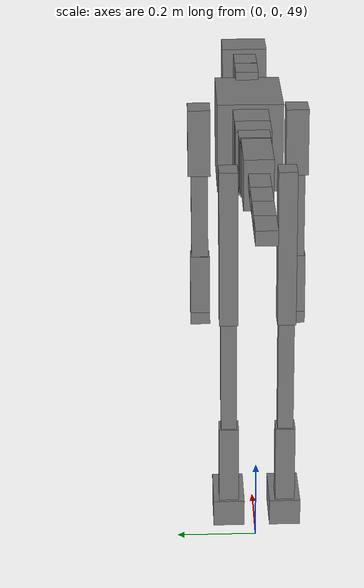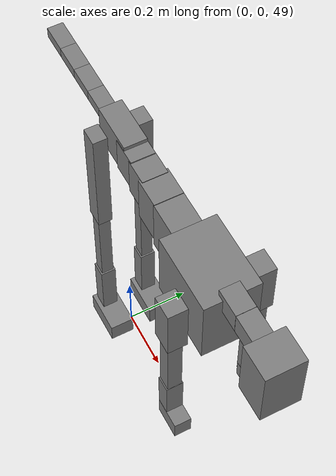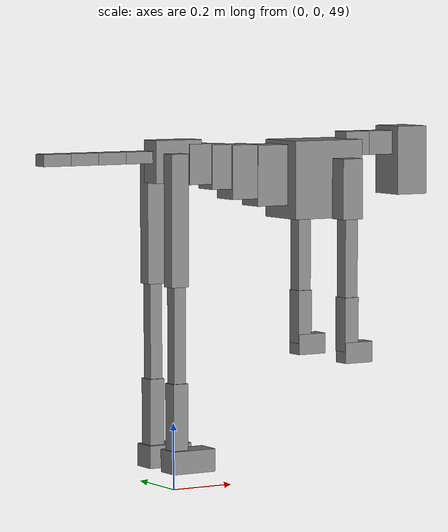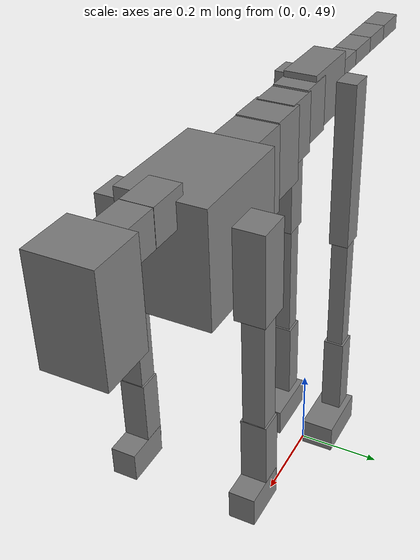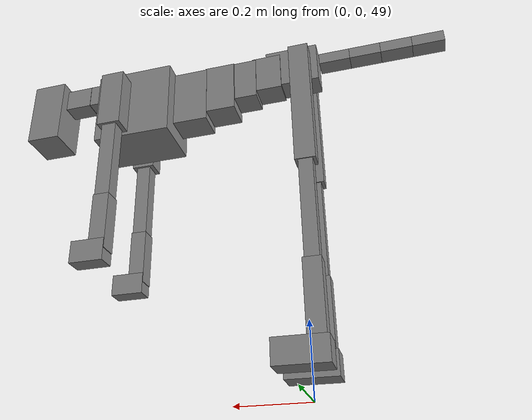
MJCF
<mujoco model="dog">

    <default>
        <joint armature="0.02" stiffness="1" damping="0.2" limited="true"/>
        <geom condim="3" friction="1 0.05 0.05" margin="0.01"/>
        <motor ctrllimited="true" ctrlrange="-1.0 1.0" forcelimited="true" gear="50"/>
    </default>

    <compiler inertiafromgeom="true" angle="radian"/>

    <option timestep="0.016" iterations="50" tolerance="1e-10" solver="Newton" jacobian="dense" cone="pyramidal"/>

    <size nconmax="20000" njmax="60000" nstack="5000000"/>
    <visual>
        <map force="0.1" zfar="30"/>
        <rgba haze="0.15 0.25 0.35 1"/>
        <quality shadowsize="2048"/>
        <global offwidth="800" offheight="800"/>
    </visual>

    <asset>
        <texture type="skybox" builtin="gradient" rgb1="0.3 0.5 0.7" rgb2="0 0 0" width="512" height="512"/>
        <texture name="texplane" type="2d" builtin="checker" rgb1=".2 .3 .4" rgb2=".1 0.15 0.2" width="512" height="512"
                 mark="cross" markrgb=".8 .8 .8"/>
        <texture name="texgeom" type="cube" builtin="flat" mark="cross" width="127" height="1278" rgb1="0.8 0.6 0.4"
                 rgb2="0.8 0.6 0.4" markrgb="1 1 1" random="0.01"/>

        <material name="matplane" reflectance="0.3" texture="texplane" texrepeat="1 1" texuniform="true"/>
        <material name="matgeom" texture="texgeom" texuniform="true" rgba="0.8 0.6 .4 1"/>
    </asset>

    <worldbody>
        <geom name="floor" pos="0 0 0" size="0 0 .25" type="plane" material="matplane" condim="3"/>

        <light directional="false" diffuse=".2 .2 .2" specular="0 0 0" pos="0 0 5" dir="0 0 -1" castshadow="false"/>
        <light mode="targetbodycom" target="torso" directional="false" diffuse=".8 .8 .8" specular="0.3 0.3 0.3"
               pos="0 0 4.0" dir="0 0 -1"/>

        <body name="root" pos="0 0 50">
            <freejoint name="root_1"/>
            <geom type="box" pos="0 0 -0.02" size="0.0774  0.0358  0.063" density="2030"/>

            <body name="spine1" pos="0.054 0 0">
                <joint name="spine1_y" axis="0 1 0" range="0 0.7" limited="true"/>
                <geom type="box" pos="0.02375 0 -0.03" size="0.04375  0.0375  0.05985" density="2030"/>

                <body name="spine2" pos="0.0612 0 0">
                    <joint name="spine2_y" axis="0 1 0" range="-0.15 0.15" limited="true"/>
                    <geom type="box" pos="0.03555  0  -0.04" size="0.04055  0.039  0.06615" density="2030"/>

                    <body name="spine3" pos="0.0730 0 0">
                        <joint name="spine3_y" axis="0 1 0" range="-0.15 0.15" limited="true"/>
                        <geom type="box" pos="0.03555  0  -0.057" size="0.04555  0.0445  0.081" density="2030"/>

                        <body name="spine4" pos="0.0780 0 0">
                            <joint name="spine4_y" axis="0 1 0" range="-0.15 0.15" limited="true"/>
                            <geom type="box" pos="0.05265  0  -0.07" size="0.05265  0.045  0.09135" density="2030"/>

                            <body name="torso" pos="0.1082 0 0">
                                <joint name="torso_y" axis="0 1 0" range="-0.15 0.15" limited="true"/>
                                <geom type="box" pos="0.11925  0  -0.085" size="0.11925  0.085  0.11745"
                                      density="2030"/>

                                <body name="neck1" pos="0.2160  0   0.0180">
                                    <joint name="neck1_y" axis="0 1 0" range="-1.2  -1" limited="true"/>
                                    <geom type="box" pos="0.0423  0  0" size="0.0423  0.03  0.036" density="2325"/>

                                    <body name="neck2" pos="0.0853  0  0">
                                        <joint name="neck2_y" axis="0 1 0" range="0.1  0" limited="true"/>
                                        <geom type="box" pos="0.0423  0  0" size="0.0423  0.03  0.036" density="2325"/>

                                        <body name="head" pos="0.0853  0  0">
                                            <joint name="head_y" axis="0 1 0" range="-0.3  -0.2" limited="true"/>
                                            <geom type="box" pos="0.0531  0  -0.055" size="0.0531  0.06  0.1044"
                                                  density="4030"/>

                                        </body>
                                    </body>
                                </body>

                                <body name="front_shoulder" pos="0.156  0   -0.0480">
                                    <joint name="front_shoulder_y" axis="0 1 0" range="-1 1.5" limited="true"/>
                                    <geom type="box" pos="0 0.13 -0.0643" size="0.0349  0.0298  0.0909" density="1158"/>
                                    <geom type="box" pos="0 -0.13 -0.0643" size="0.0349  0.0298  0.0909"
                                          density="1158"/>

                                    <body name="front_elbow" pos="0  0  -0.1285">
                                        <joint name="front_elbow_y" axis="0 1 0" range="-2 0" limited="true"/>
                                        <geom type="box" pos="0 0.13 -0.1376" size="0.0218  0.0223  0.1376"
                                              density="1081"/>
                                        <geom type="box" pos="0 -0.13 -0.1376" size="0.0218  0.0223  0.1376"
                                              density="1081"/>

                                        <body name="front_wrist" pos="0  0  -0.2752">
                                            <joint name="front_wrist_y" axis="0 1 0" range="-0.2 0" limited="true"/>
                                            <geom type="box" pos="0 0.13 -0.0690" size="0.0235  0.0261  0.0821"
                                                  density="1664"/>
                                            <geom type="box" pos="0 -0.13 -0.0690" size="0.0235  0.0261  0.0821"
                                                  density="1664"/>

                                            <body name="front_finger_end" pos="0  0  -0.1380">
                                                <joint name="front_finger_y" axis="0 1 0" range="-0.4 1"
                                                       limited="true"/>
                                                <geom type="box" pos="0.0263  0.13  -0.0165"
                                                      size="0.0483  0.0263  0.0315" density="1515"/>
                                                <geom type="box" pos="0.0263  -0.13  -0.0165"
                                                      size="0.0483  0.0263  0.0315" density="1515"/>

                                            </body>

                                        </body>
                                    </body>
                                </body>

                            </body>
                        </body>
                    </body>
                </body>
            </body>

            <body name="back_hip" pos="-0.03 0 -0.018">
                <joint name="back_hip_y" axis="0 1 0" range="-1.5 0.3" limited="true"/>
                <geom type="box" pos="0 0.07 -0.1724" size="0.0287  0.0225  0.1952" density="1154"/>
                <geom type="box" pos="0 -0.07 -0.1724" size="0.0287  0.0225  0.1952" density="1154"/>

                <body name="back_knee" pos="0  0  -0.3448">
                    <joint name="back_knee_y" axis="0 1 0" range="0 2.8" limited="true"/>
                    <geom type="box" pos="0 0.07 -0.1593" size="0.0197  0.0194  0.1748" density="1227"/>
                    <geom type="box" pos="0 -0.07 -0.1593" size="0.0197  0.0194  0.1748" density="1227"/>

                    <body name="back_ankle" pos="0  0  -0.3186">
                        <joint name="back_ankle_y" axis="0 1 0" range="-2.2 0" limited="true"/>
                        <geom type="box" pos="0 0.07 -0.1006" size="0.0244  0.0244  0.1119" density="1284"/>
                        <geom type="box" pos="0 -0.07 -0.1006" size="0.0244  0.0244  0.1119" density="1284"/>

                        <body name="back_toe_end" pos="0  0  -0.2013">
                            <joint name="back_toe_y" axis="0 1 0" range="-0.4 1" limited="true"/>
                            <geom type="box" pos="0.0385  0.07  -0.0189" size="0.0706  0.0385  0.0339" density="1515"/>
                            <geom type="box" pos="0.0385  -0.07  -0.0189" size="0.0706  0.0385  0.0339" density="1515"/>

                        </body>
                    </body>
                </body>
            </body>

            <body name="tail1" pos="-0.074 0 -0.006">
                <joint name="tail1_y" axis="0 1 0" range="-0.2 0.2" limited="true"/>
                <geom type="box" pos="-0.0536  0  0" size="0.045  0.025  0.0175" density="1587"/>

                <body name="tail2" pos="-0.09 0 0">
                    <joint name="tail2_y" axis="0 1 0" range="-0.2 0.2" limited="true"/>
                    <geom type="box" pos="-0.0536  0  0" size="0.045  0.025  0.0175" density="1587"/>

                    <body name="tail3" pos="-0.09 0 0">
                        <joint name="tail3_y" axis="0 1 0" range="-0.2 0.2" limited="true"/>
                        <geom type="box" pos="-0.0536  0  0" size="0.045  0.025  0.0175" density="1587"/>

                        <body name="tail4" pos="-0.09 0 0">
                            <joint name="tail4_y" axis="0 1 0" range="-0.2 0.2" limited="true"/>
                            <geom type="box" pos="-0.0536  0  0" size="0.045  0.025  0.0175" density="1587"/>

                        </body>
                    </body>
                </body>
            </body>
        </body>
    </worldbody>

    <actuator>
        <motor joint="spine1_y" forcerange="-150 150     "/>
        <motor joint="spine2_y" forcerange="-150 150     "/>
        <motor joint="spine3_y" forcerange="-150 150     "/>
        <motor joint="spine4_y" forcerange="-150 150     "/>
        <motor joint="torso_y" forcerange="-150 150     "/>
        <motor joint="neck1_y" forcerange="-100 100       "/>
        <motor joint="neck2_y" forcerange="-100 100       "/>
        <motor joint="head_y" forcerange="-150 150       "/>
        <motor joint="front_shoulder_y" forcerange="-153.43 145.29"/>
        <motor joint="front_elbow_y" forcerange="-124.72 137.11"/>
        <motor joint="front_wrist_y" forcerange="-67.61 141.53"/>
        <motor joint="front_finger_y" forcerange="-26.36 74.01"/>
        <motor joint="back_hip_y" forcerange="-290.35 210.28"/>
        <motor joint="back_knee_y" forcerange="-253.42 228.79"/>
        <motor joint="back_angle_y" forcerange="-240.01 50.76"/>
        <motor joint="back_toe_y" forcerange="-97.63 130.36"/>
        <motor joint="tail1_y" forcerange="-50 50     "/>
        <motor joint="tail2_y" forcerange="-50 50     "/>
        <motor joint="tail3_y" forcerange="-50 50     "/>
        <motor joint="tail4_y" forcerange="-50 50     "/>
    </actuator>
</mujoco>
